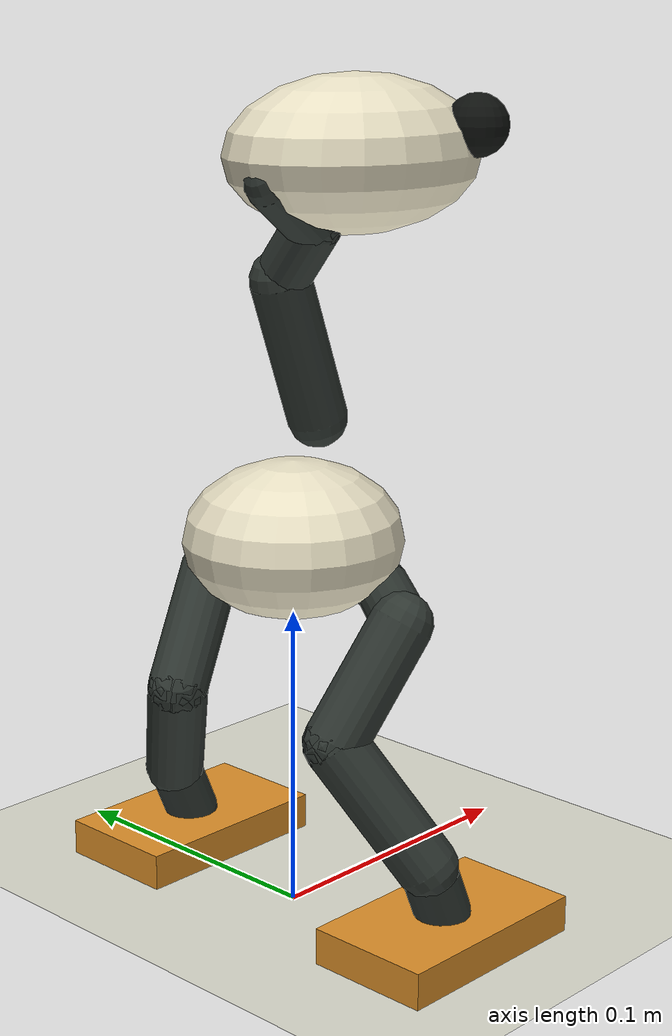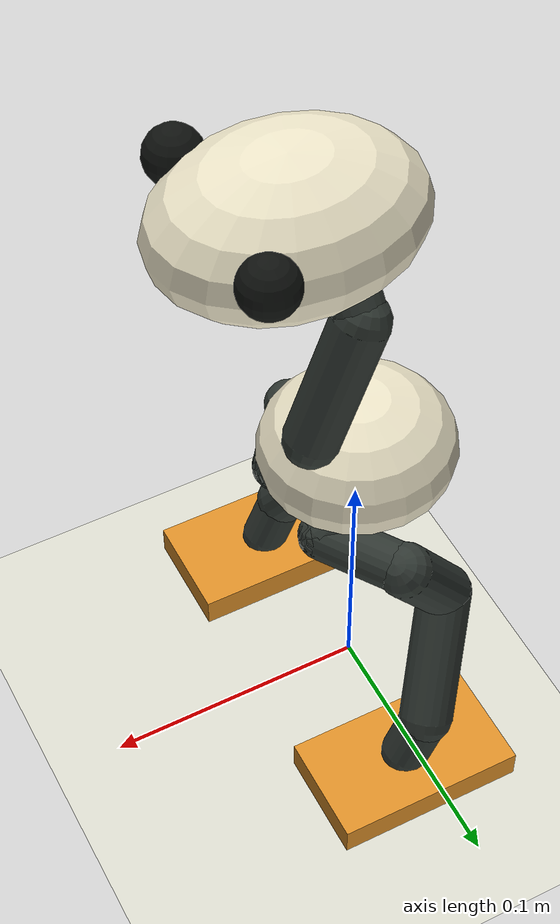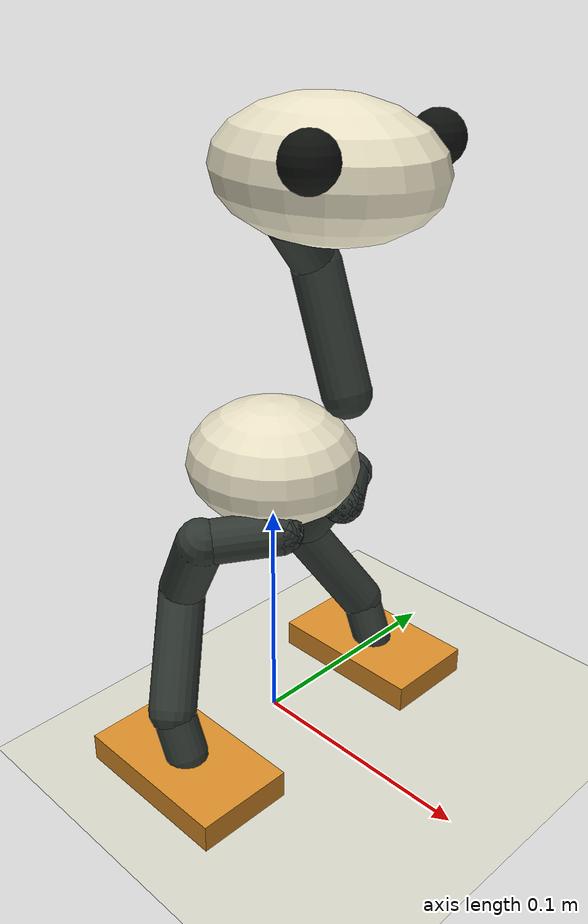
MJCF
<mujoco model="Micro_X_14_functional_interface_study">
  <compiler angle="radian" autolimits="true" />
  <option timestep=".005" gravity="0 0 -9.81" iterations="80" />
  <default>
    <joint damping=".02" armature=".00001" />
    <geom friction="1 .005 .0001" condim="3" />
  </default>
  <worldbody>
    <geom name="floor" type="plane" size="3 3 .01" rgba=".85 .85 .8 1" />
    <body name="trunk_base" pos="0 0 .125">
      <freejoint name="trunk_base_freejoint" />
      <site name="imu" size=".003" />
      <geom name="x_torso" type="ellipsoid" size=".036 .035 .025" mass=".17" rgba=".92 .89 .78 1" />
      <body name="x_left_hip_yaw" pos="0.006 0.0175 -0.005">
        <joint name="left_hip_yaw" axis="0 0 -1" range="-2.4 2.4" ref="0" />
        <geom name="left_hip_yaw_link" type="capsule" size=".009" fromto="0 0 0 0.0165 0 -0.0125" mass=".018" rgba=".19 .22 .2 1" contype="0" conaffinity="0" />
        <body name="x_left_hip_roll" pos="0.0165 0 -0.0125">
          <joint name="left_hip_roll" axis="1 0 0" range="-2.4 2.4" ref="-0.0873" />
          <geom name="left_hip_roll_link" type="capsule" size=".009" fromto="0 0 0 -0.0185 0.0249 -0.0022" mass=".018" rgba=".19 .22 .2 1" contype="0" conaffinity="0" />
          <body name="x_left_hip_pitch" pos="-0.0185 0.0249 -0.0022">
            <joint name="left_hip_pitch" axis="0 0.996191771 -0.0871891974" range="-2.4 2.4" ref="-0.4579" />
            <geom name="left_hip_pitch_link" type="capsule" size=".01" fromto="0 0 0 -0.0224 -0.0071 -0.035" mass=".04" rgba=".19 .22 .2 1" contype="1" conaffinity="1" />
            <body name="x_left_knee" pos="-0.0224 -0.0071 -0.035">
              <joint name="left_knee" axis="0 -0.996191771 0.0871891974" range="-2.4 2.4" ref="-0.0049" />
              <geom name="left_knee_link" type="capsule" size=".01" fromto="0 0 0 0.0184 0.0226 -0.0399" mass=".04" rgba=".19 .22 .2 1" contype="1" conaffinity="1" />
              <body name="x_left_ankle" pos="0.0184 0.0226 -0.0399">
                <joint name="left_ankle" axis="0 0.996191771 -0.0871891974" range="-2.4 2.4" ref="0.453" />
                <geom name="left_ankle_sole" type="box" size=".036 .021 .006" pos="0.008 0 -0.0244" mass=".035" rgba=".86 .56 .16 1" />
                <geom name="left_ankle_bracket" type="capsule" size=".009" fromto="0 0 0 0.008 0 -0.0184" mass=".025" rgba=".19 .22 .2 1" />
              </body>
            </body>
          </body>
        </body>
      </body>
      <body name="x_neck_pitch" pos="0.026 0.0145 0.0324">
        <joint name="neck_pitch" axis="0 -1 0" range="-2.4 2.4" ref="0.3491" />
        <geom name="neck_pitch_link" type="capsule" size=".01" fromto="0 0 0 -0.0171 0 0.047" mass=".04" rgba=".19 .22 .2 1" contype="1" conaffinity="1" />
        <body name="x_head_pitch" pos="-0.0171 0 0.047">
          <joint name="head_pitch" axis="0 1 0" range="-2.4 2.4" ref="0.3491" />
          <geom name="head_pitch_link" type="capsule" size=".009" fromto="0 0 0 0 -0.0145 0.0187" mass=".018" rgba=".19 .22 .2 1" contype="0" conaffinity="0" />
          <body name="x_head_yaw" pos="0 -0.0145 0.0187">
            <joint name="head_yaw" axis="0 0 1" range="-2.4 2.4" ref="0" />
            <geom name="head_yaw_link" type="capsule" size=".009" fromto="0 0 0 -0.0179 0 0.0145" mass=".018" rgba=".19 .22 .2 1" contype="0" conaffinity="0" />
            <body name="x_head_roll" pos="-0.0179 0 0.0145">
              <joint name="head_roll" axis="-1 0 0" range="-2.4 2.4" ref="0" />
              <geom name="x_head_shell" type="ellipsoid" size=".046 .036 .025" pos=".036 0 .006" mass=".13" rgba=".92 .89 .78 1" />
              <geom name="x_eye_-1" type="sphere" size=".01" pos="0.058 -0.031 0.015" mass=".003" rgba=".06 .07 .06 1" contype="0" conaffinity="0" />
              <geom name="x_eye_1" type="sphere" size=".01" pos="0.058 0.031 0.015" mass=".003" rgba=".06 .07 .06 1" contype="0" conaffinity="0" />
            </body>
          </body>
        </body>
      </body>
      <body name="x_right_hip_yaw" pos="0.006 -0.0175 -0.005">
        <joint name="right_hip_yaw" axis="0 0 -1" range="-2.4 2.4" ref="0" />
        <geom name="right_hip_yaw_link" type="capsule" size=".009" fromto="0 0 0 0.0165 0 -0.0125" mass=".018" rgba=".19 .22 .2 1" contype="0" conaffinity="0" />
        <body name="x_right_hip_roll" pos="0.0165 0 -0.0125">
          <joint name="right_hip_roll" axis="1 0 0" range="-2.4 2.4" ref="0.0873" />
          <geom name="right_hip_roll_link" type="capsule" size=".009" fromto="0 0 0 -0.0185 -0.0249 -0.0022" mass=".018" rgba=".19 .22 .2 1" contype="0" conaffinity="0" />
          <body name="x_right_hip_pitch" pos="-0.0185 -0.0249 -0.0022">
            <joint name="right_hip_pitch" axis="0 -0.996191771 -0.0871891974" range="-2.4 2.4" ref="0.4579" />
            <geom name="right_hip_pitch_link" type="capsule" size=".01" fromto="0 0 0 -0.0224 0.0071 -0.035" mass=".04" rgba=".19 .22 .2 1" contype="1" conaffinity="1" />
            <body name="x_right_knee" pos="-0.0224 0.0071 -0.035">
              <joint name="right_knee" axis="0 0.996191771 0.0871891974" range="-2.4 2.4" ref="0.0049" />
              <geom name="right_knee_link" type="capsule" size=".01" fromto="0 0 0 0.0184 -0.0226 -0.0399" mass=".04" rgba=".19 .22 .2 1" contype="1" conaffinity="1" />
              <body name="x_right_ankle" pos="0.0184 -0.0226 -0.0399">
                <joint name="right_ankle" axis="0 -0.996191771 -0.0871891974" range="-2.4 2.4" ref="-0.453" />
                <geom name="right_ankle_sole" type="box" size=".036 .021 .006" pos="0.008 0 -0.0244" mass=".035" rgba=".86 .56 .16 1" />
                <geom name="right_ankle_bracket" type="capsule" size=".009" fromto="0 0 0 0.008 0 -0.0184" mass=".025" rgba=".19 .22 .2 1" />
              </body>
            </body>
          </body>
        </body>
      </body>
    </body>
  </worldbody>
  <contact>
    <exclude body1="x_neck_pitch" body2="x_head_roll" />
    <exclude body1="x_head_pitch" body2="x_head_roll" />
    <exclude body1="x_head_yaw" body2="x_head_roll" />
  </contact>
  <actuator>
    <position name="left_hip_yaw" joint="left_hip_yaw" kp="5" ctrlrange="-2.4 2.4" forcerange="-.5 .5" />
    <position name="left_hip_roll" joint="left_hip_roll" kp="5" ctrlrange="-2.4 2.4" forcerange="-.5 .5" />
    <position name="left_hip_pitch" joint="left_hip_pitch" kp="5" ctrlrange="-2.4 2.4" forcerange="-.5 .5" />
    <position name="left_knee" joint="left_knee" kp="5" ctrlrange="-2.4 2.4" forcerange="-.5 .5" />
    <position name="left_ankle" joint="left_ankle" kp="5" ctrlrange="-2.4 2.4" forcerange="-.5 .5" />
    <position name="neck_pitch" joint="neck_pitch" kp="5" ctrlrange="-2.4 2.4" forcerange="-.5 .5" />
    <position name="head_pitch" joint="head_pitch" kp="5" ctrlrange="-2.4 2.4" forcerange="-.5 .5" />
    <position name="head_yaw" joint="head_yaw" kp="5" ctrlrange="-2.4 2.4" forcerange="-.5 .5" />
    <position name="head_roll" joint="head_roll" kp="5" ctrlrange="-2.4 2.4" forcerange="-.5 .5" />
    <position name="right_hip_yaw" joint="right_hip_yaw" kp="5" ctrlrange="-2.4 2.4" forcerange="-.5 .5" />
    <position name="right_hip_roll" joint="right_hip_roll" kp="5" ctrlrange="-2.4 2.4" forcerange="-.5 .5" />
    <position name="right_hip_pitch" joint="right_hip_pitch" kp="5" ctrlrange="-2.4 2.4" forcerange="-.5 .5" />
    <position name="right_knee" joint="right_knee" kp="5" ctrlrange="-2.4 2.4" forcerange="-.5 .5" />
    <position name="right_ankle" joint="right_ankle" kp="5" ctrlrange="-2.4 2.4" forcerange="-.5 .5" />
  </actuator>
  <sensor>
    <gyro name="imu_ang_vel" site="imu" />
    <accelerometer name="imu_accel" site="imu" />
  </sensor>
</mujoco>
